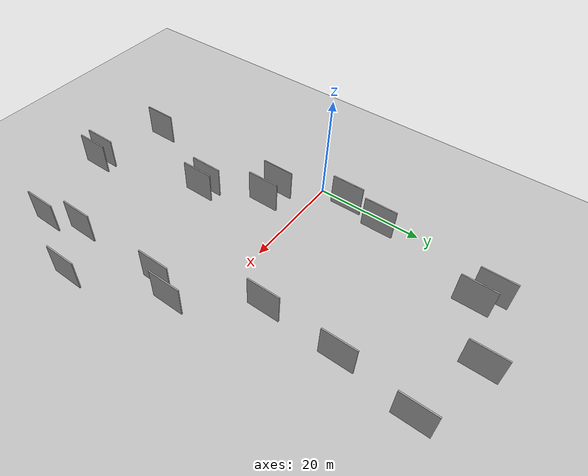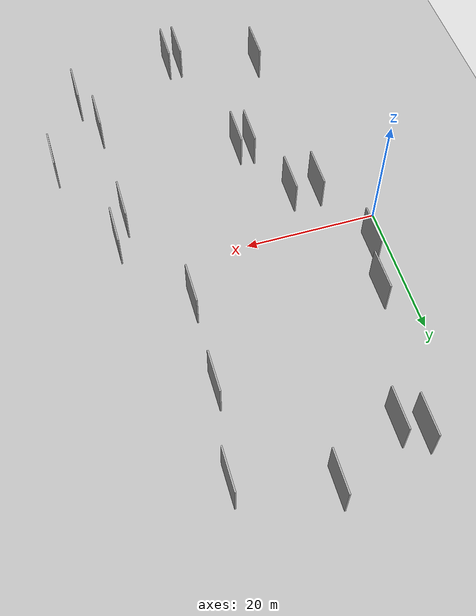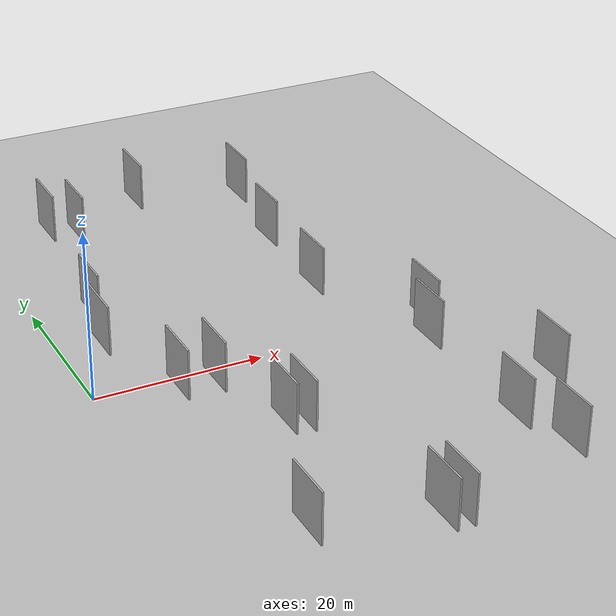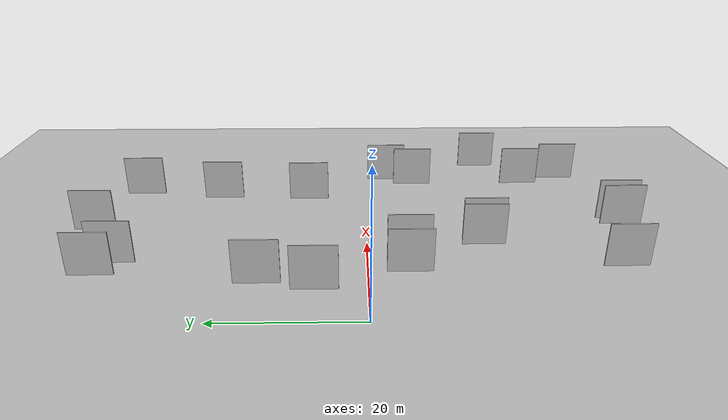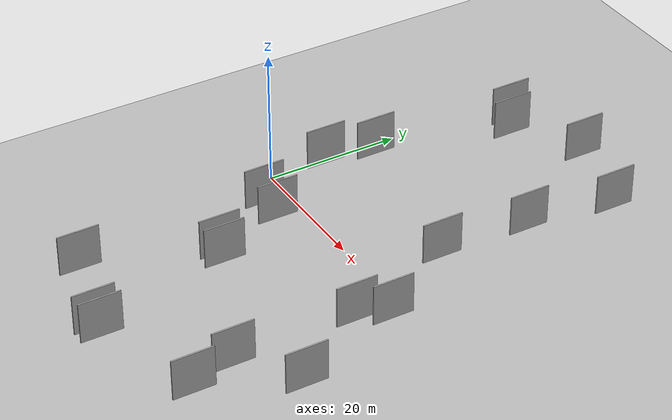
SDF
<?xml version="1.0" encoding="utf-8"?>

<sdf version="1.6">

   <world name="default">

      <gui fullscreen="0">

         <camera name="user_camera">

            <pose>-15 0 4.57585 0 0 0</pose>

            <view_controller>orbit</view_controller>

         </camera>

      </gui>

      <scene>

         <sky>

           <clouds>

             <speed>12</speed>

           </clouds>

         </sky>

         <ambient>0.4 0.4 0.4 1</ambient>

         <background>0.7 0.7 0.7 1</background>

         <shadows>1</shadows>

      </scene>

      <gravity>0 0 -9.8066</gravity>

      <magnetic_field>6e-06 2.3e-05 -4.2e-05</magnetic_field>

      <physics default="0" name="default_physics" type="ode">

         <ode>

            <solver>

               <type>quick</type>

               <iters>10</iters>

               <sor>1.0</sor>

               <use_dynamic_moi_rescaling>0</use_dynamic_moi_rescaling>

            </solver>

            <constraints>

               <cfm>0</cfm>

               <erp>0.2</erp>

               <contact_max_correcting_vel>100</contact_max_correcting_vel>

               <contact_surface_layer>0.001</contact_surface_layer>

            </constraints>

         </ode>

         <max_step_size>0.004</max_step_size>

         <real_time_factor>1</real_time_factor>

         <real_time_update_rate>250</real_time_update_rate>

      </physics>

      <light name="sun" type="directional">

         <cast_shadows>1</cast_shadows>

         <pose>0 0 10 0 0 0</pose>

         <diffuse>0.8 0.8 0.8 1</diffuse>

         <specular>0.2 0.2 0.2 1</specular>

         <attenuation>

            <range>1000</range>

            <constant>0.9</constant>

            <linear>0.01</linear>

            <quadratic>0.001</quadratic>

         </attenuation>

         <direction>-0.5 0.1 -0.9</direction>

      </light>

      <include>

         <name>ground_plane_1</name>

         <uri>model://HANNAS_ground_plane</uri>

         <pose>0 0 0  0 0 0</pose>

      </include>

      <include>

         <name>ground_plane_2</name>

         <uri>model://HANNAS_ground_plane</uri>

         <pose>100 0 0  0 0 0</pose>

      </include>

      <model name="HANNAS_wall_1">

         <static>1</static>

         <pose frame="">44.8680 -19.7840 2.5 0.000000 0.000000 1.570796</pose>

         <link name="link">

            <pose frame="">0 0 3.00 0 0 0</pose>

            <collision name="collision">

               <geometry>

                  <box>

                     <size>6.00 0.2 6.00</size>

                  </box>

               </geometry>

               <max_contacts>10</max_contacts>

               <surface>

                  <contact>

                     <ode/>

                  </contact>

                  <bounce/>

                  <friction>

                     <torsional>

                        <ode/>

                     </torsional>

                     <ode/>

                  </friction>

               </surface>

            </collision>

            <visual name="visual">

               <cast_shadows>0</cast_shadows>

               <geometry>

                  <box>

                     <size>6.00 0.2 6.00</size>

                  </box>

               </geometry>

               <material>

                  <script>

                     <uri>model://HANNAS_wall/materials/scripts</uri>

                     <uri>model://HANNAS_wall/materials/textures</uri>

                     <name>vrc/HANNAS_wall</name>

                  </script>

               </material>

            </visual>

            <self_collide>0</self_collide>

            <enable_wind>0</enable_wind>

            <kinematic>0</kinematic>

         </link>

      </model>

      <model name="HANNAS_wall_2">

         <static>1</static>

         <pose frame="">23.0405 -37.1737 2.5 0.000000 0.000000 1.570796</pose>

         <link name="link">

            <pose frame="">0 0 3.00 0 0 0</pose>

            <collision name="collision">

               <geometry>

                  <box>

                     <size>6.00 0.2 6.00</size>

                  </box>

               </geometry>

               <max_contacts>10</max_contacts>

               <surface>

                  <contact>

                     <ode/>

                  </contact>

                  <bounce/>

                  <friction>

                     <torsional>

                        <ode/>

                     </torsional>

                     <ode/>

                  </friction>

               </surface>

            </collision>

            <visual name="visual">

               <cast_shadows>0</cast_shadows>

               <geometry>

                  <box>

                     <size>6.00 0.2 6.00</size>

                  </box>

               </geometry>

               <material>

                  <script>

                     <uri>model://HANNAS_wall/materials/scripts</uri>

                     <uri>model://HANNAS_wall/materials/textures</uri>

                     <name>vrc/HANNAS_wall</name>

                  </script>

               </material>

            </visual>

            <self_collide>0</self_collide>

            <enable_wind>0</enable_wind>

            <kinematic>0</kinematic>

         </link>

      </model>

      <model name="HANNAS_wall_3">

         <static>1</static>

         <pose frame="">8.7459 -33.5266 2.5 0.000000 0.000000 1.570796</pose>

         <link name="link">

            <pose frame="">0 0 3.00 0 0 0</pose>

            <collision name="collision">

               <geometry>

                  <box>

                     <size>6.00 0.2 6.00</size>

                  </box>

               </geometry>

               <max_contacts>10</max_contacts>

               <surface>

                  <contact>

                     <ode/>

                  </contact>

                  <bounce/>

                  <friction>

                     <torsional>

                        <ode/>

                     </torsional>

                     <ode/>

                  </friction>

               </surface>

            </collision>

            <visual name="visual">

               <cast_shadows>0</cast_shadows>

               <geometry>

                  <box>

                     <size>6.00 0.2 6.00</size>

                  </box>

               </geometry>

               <material>

                  <script>

                     <uri>model://HANNAS_wall/materials/scripts</uri>

                     <uri>model://HANNAS_wall/materials/textures</uri>

                     <name>vrc/HANNAS_wall</name>

                  </script>

               </material>

            </visual>

            <self_collide>0</self_collide>

            <enable_wind>0</enable_wind>

            <kinematic>0</kinematic>

         </link>

      </model>

      <model name="HANNAS_wall_4">

         <static>1</static>

         <pose frame="">36.7471 -25.5950 2.5 0.000000 0.000000 1.570796</pose>

         <link name="link">

            <pose frame="">0 0 3.00 0 0 0</pose>

            <collision name="collision">

               <geometry>

                  <box>

                     <size>6.00 0.2 6.00</size>

                  </box>

               </geometry>

               <max_contacts>10</max_contacts>

               <surface>

                  <contact>

                     <ode/>

                  </contact>

                  <bounce/>

                  <friction>

                     <torsional>

                        <ode/>

                     </torsional>

                     <ode/>

                  </friction>

               </surface>

            </collision>

            <visual name="visual">

               <cast_shadows>0</cast_shadows>

               <geometry>

                  <box>

                     <size>6.00 0.2 6.00</size>

                  </box>

               </geometry>

               <material>

                  <script>

                     <uri>model://HANNAS_wall/materials/scripts</uri>

                     <uri>model://HANNAS_wall/materials/textures</uri>

                     <name>vrc/HANNAS_wall</name>

                  </script>

               </material>

            </visual>

            <self_collide>0</self_collide>

            <enable_wind>0</enable_wind>

            <kinematic>0</kinematic>

         </link>

      </model>

      <model name="HANNAS_wall_5">

         <static>1</static>

         <pose frame="">17.0178 -16.3620 2.5 0.000000 0.000000 1.570796</pose>

         <link name="link">

            <pose frame="">0 0 3.00 0 0 0</pose>

            <collision name="collision">

               <geometry>

                  <box>

                     <size>6.00 0.2 6.00</size>

                  </box>

               </geometry>

               <max_contacts>10</max_contacts>

               <surface>

                  <contact>

                     <ode/>

                  </contact>

                  <bounce/>

                  <friction>

                     <torsional>

                        <ode/>

                     </torsional>

                     <ode/>

                  </friction>

               </surface>

            </collision>

            <visual name="visual">

               <cast_shadows>0</cast_shadows>

               <geometry>

                  <box>

                     <size>6.00 0.2 6.00</size>

                  </box>

               </geometry>

               <material>

                  <script>

                     <uri>model://HANNAS_wall/materials/scripts</uri>

                     <uri>model://HANNAS_wall/materials/textures</uri>

                     <name>vrc/HANNAS_wall</name>

                  </script>

               </material>

            </visual>

            <self_collide>0</self_collide>

            <enable_wind>0</enable_wind>

            <kinematic>0</kinematic>

         </link>

      </model>

      <model name="HANNAS_wall_6">

         <static>1</static>

         <pose frame="">7.4429 35.3825 2.5 0.000000 0.000000 1.570796</pose>

         <link name="link">

            <pose frame="">0 0 3.00 0 0 0</pose>

            <collision name="collision">

               <geometry>

                  <box>

                     <size>6.00 0.2 6.00</size>

                  </box>

               </geometry>

               <max_contacts>10</max_contacts>

               <surface>

                  <contact>

                     <ode/>

                  </contact>

                  <bounce/>

                  <friction>

                     <torsional>

                        <ode/>

                     </torsional>

                     <ode/>

                  </friction>

               </surface>

            </collision>

            <visual name="visual">

               <cast_shadows>0</cast_shadows>

               <geometry>

                  <box>

                     <size>6.00 0.2 6.00</size>

                  </box>

               </geometry>

               <material>

                  <script>

                     <uri>model://HANNAS_wall/materials/scripts</uri>

                     <uri>model://HANNAS_wall/materials/textures</uri>

                     <name>vrc/HANNAS_wall</name>

                  </script>

               </material>

            </visual>

            <self_collide>0</self_collide>

            <enable_wind>0</enable_wind>

            <kinematic>0</kinematic>

         </link>

      </model>

      <model name="HANNAS_wall_7">

         <static>1</static>

         <pose frame="">11.8801 -5.5077 2.5 0.000000 0.000000 1.570796</pose>

         <link name="link">

            <pose frame="">0 0 3.00 0 0 0</pose>

            <collision name="collision">

               <geometry>

                  <box>

                     <size>6.00 0.2 6.00</size>

                  </box>

               </geometry>

               <max_contacts>10</max_contacts>

               <surface>

                  <contact>

                     <ode/>

                  </contact>

                  <bounce/>

                  <friction>

                     <torsional>

                        <ode/>

                     </torsional>

                     <ode/>

                  </friction>

               </surface>

            </collision>

            <visual name="visual">

               <cast_shadows>0</cast_shadows>

               <geometry>

                  <box>

                     <size>6.00 0.2 6.00</size>

                  </box>

               </geometry>

               <material>

                  <script>

                     <uri>model://HANNAS_wall/materials/scripts</uri>

                     <uri>model://HANNAS_wall/materials/textures</uri>

                     <name>vrc/HANNAS_wall</name>

                  </script>

               </material>

            </visual>

            <self_collide>0</self_collide>

            <enable_wind>0</enable_wind>

            <kinematic>0</kinematic>

         </link>

      </model>

      <model name="HANNAS_wall_8">

         <static>1</static>

         <pose frame="">5.1697 14.0634 2.5 0.000000 0.000000 1.570796</pose>

         <link name="link">

            <pose frame="">0 0 3.00 0 0 0</pose>

            <collision name="collision">

               <geometry>

                  <box>

                     <size>6.00 0.2 6.00</size>

                  </box>

               </geometry>

               <max_contacts>10</max_contacts>

               <surface>

                  <contact>

                     <ode/>

                  </contact>

                  <bounce/>

                  <friction>

                     <torsional>

                        <ode/>

                     </torsional>

                     <ode/>

                  </friction>

               </surface>

            </collision>

            <visual name="visual">

               <cast_shadows>0</cast_shadows>

               <geometry>

                  <box>

                     <size>6.00 0.2 6.00</size>

                  </box>

               </geometry>

               <material>

                  <script>

                     <uri>model://HANNAS_wall/materials/scripts</uri>

                     <uri>model://HANNAS_wall/materials/textures</uri>

                     <name>vrc/HANNAS_wall</name>

                  </script>

               </material>

            </visual>

            <self_collide>0</self_collide>

            <enable_wind>0</enable_wind>

            <kinematic>0</kinematic>

         </link>

      </model>

      <model name="HANNAS_wall_9">

         <static>1</static>

         <pose frame="">7.7585 -5.2810 2.5 0.000000 0.000000 1.570796</pose>

         <link name="link">

            <pose frame="">0 0 3.00 0 0 0</pose>

            <collision name="collision">

               <geometry>

                  <box>

                     <size>6.00 0.2 6.00</size>

                  </box>

               </geometry>

               <max_contacts>10</max_contacts>

               <surface>

                  <contact>

                     <ode/>

                  </contact>

                  <bounce/>

                  <friction>

                     <torsional>

                        <ode/>

                     </torsional>

                     <ode/>

                  </friction>

               </surface>

            </collision>

            <visual name="visual">

               <cast_shadows>0</cast_shadows>

               <geometry>

                  <box>

                     <size>6.00 0.2 6.00</size>

                  </box>

               </geometry>

               <material>

                  <script>

                     <uri>model://HANNAS_wall/materials/scripts</uri>

                     <uri>model://HANNAS_wall/materials/textures</uri>

                     <name>vrc/HANNAS_wall</name>

                  </script>

               </material>

            </visual>

            <self_collide>0</self_collide>

            <enable_wind>0</enable_wind>

            <kinematic>0</kinematic>

         </link>

      </model>

      <model name="HANNAS_wall_10">

         <static>1</static>

         <pose frame="">38.8941 -32.2576 2.5 0.000000 0.000000 1.570796</pose>

         <link name="link">

            <pose frame="">0 0 3.00 0 0 0</pose>

            <collision name="collision">

               <geometry>

                  <box>

                     <size>6.00 0.2 6.00</size>

                  </box>

               </geometry>

               <max_contacts>10</max_contacts>

               <surface>

                  <contact>

                     <ode/>

                  </contact>

                  <bounce/>

                  <friction>

                     <torsional>

                        <ode/>

                     </torsional>

                     <ode/>

                  </friction>

               </surface>

            </collision>

            <visual name="visual">

               <cast_shadows>0</cast_shadows>

               <geometry>

                  <box>

                     <size>6.00 0.2 6.00</size>

                  </box>

               </geometry>

               <material>

                  <script>

                     <uri>model://HANNAS_wall/materials/scripts</uri>

                     <uri>model://HANNAS_wall/materials/textures</uri>

                     <name>vrc/HANNAS_wall</name>

                  </script>

               </material>

            </visual>

            <self_collide>0</self_collide>

            <enable_wind>0</enable_wind>

            <kinematic>0</kinematic>

         </link>

      </model>

      <model name="HANNAS_wall_11">

         <static>1</static>

         <pose frame="">36.7300 -7.8213 2.5 0.000000 0.000000 1.570796</pose>

         <link name="link">

            <pose frame="">0 0 3.00 0 0 0</pose>

            <collision name="collision">

               <geometry>

                  <box>

                     <size>6.00 0.2 6.00</size>

                  </box>

               </geometry>

               <max_contacts>10</max_contacts>

               <surface>

                  <contact>

                     <ode/>

                  </contact>

                  <bounce/>

                  <friction>

                     <torsional>

                        <ode/>

                     </torsional>

                     <ode/>

                  </friction>

               </surface>

            </collision>

            <visual name="visual">

               <cast_shadows>0</cast_shadows>

               <geometry>

                  <box>

                     <size>6.00 0.2 6.00</size>

                  </box>

               </geometry>

               <material>

                  <script>

                     <uri>model://HANNAS_wall/materials/scripts</uri>

                     <uri>model://HANNAS_wall/materials/textures</uri>

                     <name>vrc/HANNAS_wall</name>

                  </script>

               </material>

            </visual>

            <self_collide>0</self_collide>

            <enable_wind>0</enable_wind>

            <kinematic>0</kinematic>

         </link>

      </model>

      <model name="HANNAS_wall_12">

         <static>1</static>

         <pose frame="">30.7591 8.8568 2.5 0.000000 0.000000 1.570796</pose>

         <link name="link">

            <pose frame="">0 0 3.00 0 0 0</pose>

            <collision name="collision">

               <geometry>

                  <box>

                     <size>6.00 0.2 6.00</size>

                  </box>

               </geometry>

               <max_contacts>10</max_contacts>

               <surface>

                  <contact>

                     <ode/>

                  </contact>

                  <bounce/>

                  <friction>

                     <torsional>

                        <ode/>

                     </torsional>

                     <ode/>

                  </friction>

               </surface>

            </collision>

            <visual name="visual">

               <cast_shadows>0</cast_shadows>

               <geometry>

                  <box>

                     <size>6.00 0.2 6.00</size>

                  </box>

               </geometry>

               <material>

                  <script>

                     <uri>model://HANNAS_wall/materials/scripts</uri>

                     <uri>model://HANNAS_wall/materials/textures</uri>

                     <name>vrc/HANNAS_wall</name>

                  </script>

               </material>

            </visual>

            <self_collide>0</self_collide>

            <enable_wind>0</enable_wind>

            <kinematic>0</kinematic>

         </link>

      </model>

      <model name="HANNAS_wall_13">

         <static>1</static>

         <pose frame="">3.6218 6.8292 2.5 0.000000 0.000000 1.570796</pose>

         <link name="link">

            <pose frame="">0 0 3.00 0 0 0</pose>

            <collision name="collision">

               <geometry>

                  <box>

                     <size>6.00 0.2 6.00</size>

                  </box>

               </geometry>

               <max_contacts>10</max_contacts>

               <surface>

                  <contact>

                     <ode/>

                  </contact>

                  <bounce/>

                  <friction>

                     <torsional>

                        <ode/>

                     </torsional>

                     <ode/>

                  </friction>

               </surface>

            </collision>

            <visual name="visual">

               <cast_shadows>0</cast_shadows>

               <geometry>

                  <box>

                     <size>6.00 0.2 6.00</size>

                  </box>

               </geometry>

               <material>

                  <script>

                     <uri>model://HANNAS_wall/materials/scripts</uri>

                     <uri>model://HANNAS_wall/materials/textures</uri>

                     <name>vrc/HANNAS_wall</name>

                  </script>

               </material>

            </visual>

            <self_collide>0</self_collide>

            <enable_wind>0</enable_wind>

            <kinematic>0</kinematic>

         </link>

      </model>

      <model name="HANNAS_wall_14">

         <static>1</static>

         <pose frame="">21.1207 -37.1727 2.5 0.000000 0.000000 1.570796</pose>

         <link name="link">

            <pose frame="">0 0 3.00 0 0 0</pose>

            <collision name="collision">

               <geometry>

                  <box>

                     <size>6.00 0.2 6.00</size>

                  </box>

               </geometry>

               <max_contacts>10</max_contacts>

               <surface>

                  <contact>

                     <ode/>

                  </contact>

                  <bounce/>

                  <friction>

                     <torsional>

                        <ode/>

                     </torsional>

                     <ode/>

                  </friction>

               </surface>

            </collision>

            <visual name="visual">

               <cast_shadows>0</cast_shadows>

               <geometry>

                  <box>

                     <size>6.00 0.2 6.00</size>

                  </box>

               </geometry>

               <material>

                  <script>

                     <uri>model://HANNAS_wall/materials/scripts</uri>

                     <uri>model://HANNAS_wall/materials/textures</uri>

                     <name>vrc/HANNAS_wall</name>

                  </script>

               </material>

            </visual>

            <self_collide>0</self_collide>

            <enable_wind>0</enable_wind>

            <kinematic>0</kinematic>

         </link>

      </model>

      <model name="HANNAS_wall_15">

         <static>1</static>

         <pose frame="">31.3482 22.2937 2.5 0.000000 0.000000 1.570796</pose>

         <link name="link">

            <pose frame="">0 0 3.00 0 0 0</pose>

            <collision name="collision">

               <geometry>

                  <box>

                     <size>6.00 0.2 6.00</size>

                  </box>

               </geometry>

               <max_contacts>10</max_contacts>

               <surface>

                  <contact>

                     <ode/>

                  </contact>

                  <bounce/>

                  <friction>

                     <torsional>

                        <ode/>

                     </torsional>

                     <ode/>

                  </friction>

               </surface>

            </collision>

            <visual name="visual">

               <cast_shadows>0</cast_shadows>

               <geometry>

                  <box>

                     <size>6.00 0.2 6.00</size>

                  </box>

               </geometry>

               <material>

                  <script>

                     <uri>model://HANNAS_wall/materials/scripts</uri>

                     <uri>model://HANNAS_wall/materials/textures</uri>

                     <name>vrc/HANNAS_wall</name>

                  </script>

               </material>

            </visual>

            <self_collide>0</self_collide>

            <enable_wind>0</enable_wind>

            <kinematic>0</kinematic>

         </link>

      </model>

      <model name="HANNAS_wall_16">

         <static>1</static>

         <pose frame="">10.5894 33.6070 2.5 0.000000 0.000000 1.570796</pose>

         <link name="link">

            <pose frame="">0 0 3.00 0 0 0</pose>

            <collision name="collision">

               <geometry>

                  <box>

                     <size>6.00 0.2 6.00</size>

                  </box>

               </geometry>

               <max_contacts>10</max_contacts>

               <surface>

                  <contact>

                     <ode/>

                  </contact>

                  <bounce/>

                  <friction>

                     <torsional>

                        <ode/>

                     </torsional>

                     <ode/>

                  </friction>

               </surface>

            </collision>

            <visual name="visual">

               <cast_shadows>0</cast_shadows>

               <geometry>

                  <box>

                     <size>6.00 0.2 6.00</size>

                  </box>

               </geometry>

               <material>

                  <script>

                     <uri>model://HANNAS_wall/materials/scripts</uri>

                     <uri>model://HANNAS_wall/materials/textures</uri>

                     <name>vrc/HANNAS_wall</name>

                  </script>

               </material>

            </visual>

            <self_collide>0</self_collide>

            <enable_wind>0</enable_wind>

            <kinematic>0</kinematic>

         </link>

      </model>

      <model name="HANNAS_wall_17">

         <static>1</static>

         <pose frame="">33.1871 35.1069 2.5 0.000000 0.000000 1.570796</pose>

         <link name="link">

            <pose frame="">0 0 3.00 0 0 0</pose>

            <collision name="collision">

               <geometry>

                  <box>

                     <size>6.00 0.2 6.00</size>

                  </box>

               </geometry>

               <max_contacts>10</max_contacts>

               <surface>

                  <contact>

                     <ode/>

                  </contact>

                  <bounce/>

                  <friction>

                     <torsional>

                        <ode/>

                     </torsional>

                     <ode/>

                  </friction>

               </surface>

            </collision>

            <visual name="visual">

               <cast_shadows>0</cast_shadows>

               <geometry>

                  <box>

                     <size>6.00 0.2 6.00</size>

                  </box>

               </geometry>

               <material>

                  <script>

                     <uri>model://HANNAS_wall/materials/scripts</uri>

                     <uri>model://HANNAS_wall/materials/textures</uri>

                     <name>vrc/HANNAS_wall</name>

                  </script>

               </material>

            </visual>

            <self_collide>0</self_collide>

            <enable_wind>0</enable_wind>

            <kinematic>0</kinematic>

         </link>

      </model>

      <model name="HANNAS_wall_18">

         <static>1</static>

         <pose frame="">38.6965 -3.5997 2.5 0.000000 0.000000 1.570796</pose>

         <link name="link">

            <pose frame="">0 0 3.00 0 0 0</pose>

            <collision name="collision">

               <geometry>

                  <box>

                     <size>6.00 0.2 6.00</size>

                  </box>

               </geometry>

               <max_contacts>10</max_contacts>

               <surface>

                  <contact>

                     <ode/>

                  </contact>

                  <bounce/>

                  <friction>

                     <torsional>

                        <ode/>

                     </torsional>

                     <ode/>

                  </friction>

               </surface>

            </collision>

            <visual name="visual">

               <cast_shadows>0</cast_shadows>

               <geometry>

                  <box>

                     <size>6.00 0.2 6.00</size>

                  </box>

               </geometry>

               <material>

                  <script>

                     <uri>model://HANNAS_wall/materials/scripts</uri>

                     <uri>model://HANNAS_wall/materials/textures</uri>

                     <name>vrc/HANNAS_wall</name>

                  </script>

               </material>

            </visual>

            <self_collide>0</self_collide>

            <enable_wind>0</enable_wind>

            <kinematic>0</kinematic>

         </link>

      </model>

      <model name="HANNAS_wall_19">

         <static>1</static>

         <pose frame="">20.4399 39.1008 2.5 0.000000 0.000000 1.570796</pose>

         <link name="link">

            <pose frame="">0 0 3.00 0 0 0</pose>

            <collision name="collision">

               <geometry>

                  <box>

                     <size>6.00 0.2 6.00</size>

                  </box>

               </geometry>

               <max_contacts>10</max_contacts>

               <surface>

                  <contact>

                     <ode/>

                  </contact>

                  <bounce/>

                  <friction>

                     <torsional>

                        <ode/>

                     </torsional>

                     <ode/>

                  </friction>

               </surface>

            </collision>

            <visual name="visual">

               <cast_shadows>0</cast_shadows>

               <geometry>

                  <box>

                     <size>6.00 0.2 6.00</size>

                  </box>

               </geometry>

               <material>

                  <script>

                     <uri>model://HANNAS_wall/materials/scripts</uri>

                     <uri>model://HANNAS_wall/materials/textures</uri>

                     <name>vrc/HANNAS_wall</name>

                  </script>

               </material>

            </visual>

            <self_collide>0</self_collide>

            <enable_wind>0</enable_wind>

            <kinematic>0</kinematic>

         </link>

      </model>

      <model name="HANNAS_wall_20">

         <static>1</static>

         <pose frame="">14.9909 -16.0042 2.5 0.000000 0.000000 1.570796</pose>

         <link name="link">

            <pose frame="">0 0 3.00 0 0 0</pose>

            <collision name="collision">

               <geometry>

                  <box>

                     <size>6.00 0.2 6.00</size>

                  </box>

               </geometry>

               <max_contacts>10</max_contacts>

               <surface>

                  <contact>

                     <ode/>

                  </contact>

                  <bounce/>

                  <friction>

                     <torsional>

                        <ode/>

                     </torsional>

                     <ode/>

                  </friction>

               </surface>

            </collision>

            <visual name="visual">

               <cast_shadows>0</cast_shadows>

               <geometry>

                  <box>

                     <size>6.00 0.2 6.00</size>

                  </box>

               </geometry>

               <material>

                  <script>

                     <uri>model://HANNAS_wall/materials/scripts</uri>

                     <uri>model://HANNAS_wall/materials/textures</uri>

                     <name>vrc/HANNAS_wall</name>

                  </script>

               </material>

            </visual>

            <self_collide>0</self_collide>

            <enable_wind>0</enable_wind>

            <kinematic>0</kinematic>

         </link>

      </model>

   </world>

</sdf>

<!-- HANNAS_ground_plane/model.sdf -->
<sdf version="1.4">
<model name="HANNAS_ground_plane">
  <static>true</static>
    <link name="link">
      <collision name="collision">
        <geometry>
          <plane>
            <normal>0 0 1</normal>
            <size>1000 1000</size>
          </plane>
        </geometry>
        <surface>
          <friction>
            <ode>
              <mu>100</mu>
              <mu2>50</mu2>
            </ode>
          </friction>
        </surface>
      </collision>
      <visual name="visual">
        <cast_shadows>false</cast_shadows>
        <geometry>
          <plane>
            <normal>0 0 1</normal>
            <size>1000 1000</size>
          </plane>
        </geometry>
        <material>
          <script>
            <uri>model://HANNAS_ground_plane/materials/scripts/HANNAS_ground_plane.material</uri>
	    <uri>model://HANNAS_ground_plane/materials/textures</uri>
            <name>HANNASGroundPlane/Image</name>
          </script>
        </material>
      </visual>
    </link>
  </model>
</sdf>
